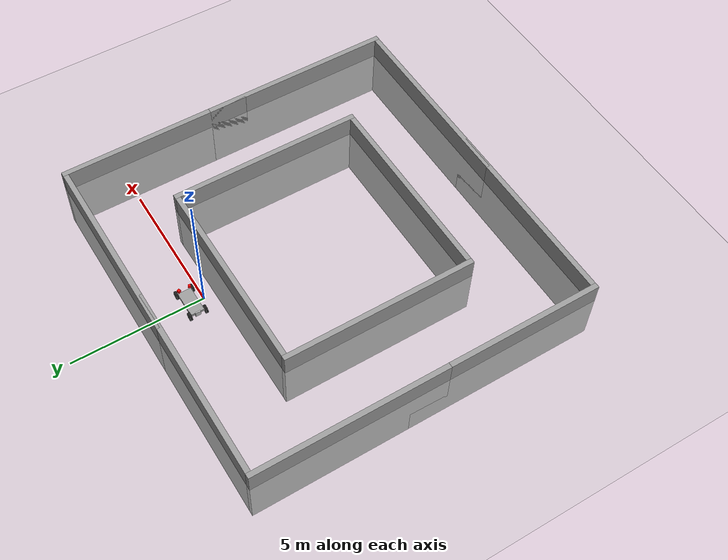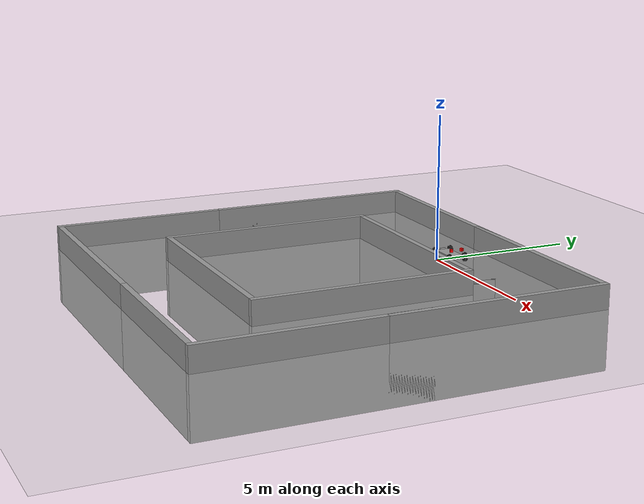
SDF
<?xml version="1.0" ?>
<sdf version='1.6'>
  <world name='corridor'>
    <physics type='ode'>
      <ode>
        <solver>
          <type>quick</type>
          <iters>1000</iters>
          <sor>1.3</sor>
        </solver>
        <constraints>
          <cfm>0</cfm>
          <erp>0.2</erp>
          <contact_max_correcting_vel>100</contact_max_correcting_vel>
          <contact_surface_layer>0.001</contact_surface_layer>
        </constraints>
      </ode>
      <max_step_size>0.01</max_step_size>
      <real_time_factor>1</real_time_factor>
      <real_time_update_rate>100</real_time_update_rate>
      <gravity>0 0 -9.8</gravity>
    </physics>

    <include>
      <uri>model://ground_plane</uri>
    </include>

    <include>
      <uri>model://sun</uri>
    </include>

    <include>
      <uri>model://auto_trax_car</uri>
      <pose>0 0.5 0 0 0 0</pose>
    </include>

    <include>
      <uri>model://grey_wall</uri>
      <pose>3 2 -2 0 0 0</pose>
    </include>

    <include>
      <uri>model://grey_wall</uri>
      <pose>0 -1 -2 0 0 0</pose>
    </include>

    <include>
      <uri>model://grey_wall</uri>
      <pose>6.85 -1.65 -2 0 0 1.57079632679</pose>
    </include>

    <include>
      <uri>model://grey_wall</uri>
      <pose>-6.85 -7.65 -2 0 0 1.57079632679</pose>
    </include>

    <include>
      <uri>model://grey_wall</uri>
      <pose>3.85 -4.65 -2 0 0 1.57079632679</pose>
    </include>

    <include>
      <uri>model://grey_wall</uri>
      <pose>0 -8.3 -2 0 0 0</pose>
    </include>

    <include>
      <uri>model://grey_wall</uri>
      <pose>3 -11.3 -2 0 0 0</pose>
    </include>

    <include>
      <uri>model://grey_wall</uri>
      <pose>6.85 -7.65 -2 0 0 1.57079632679</pose>
    </include>

    <include>
      <uri>model://grey_wall</uri>
      <pose>-3.85 -4.65 -2 0 0 1.57079632679</pose>
    </include>

    <include>
      <uri>model://grey_wall</uri>
      <pose>-6.85 -1.65 -2 0 0 1.57079632679</pose>
    </include>

    <include>
      <uri>model://grey_wall</uri>
      <pose>-3 2 -2 0 0 0</pose>
    </include>

    <include>
      <uri>model://grey_wall</uri>
      <pose>-3 -11.3 -2 0 0 0</pose>
    </include>
  </world>
</sdf>

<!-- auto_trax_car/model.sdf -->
<sdf version="1.4">
  <model name="auto_trax_car">
    <link name="chassis">
      <pose>0 0 0.15  0 0 0</pose>
      <inertial>
        <pose>0 0 0  0 0 0</pose>
        <mass>5</mass>
        <inertia>
          <ixx>0.21666666666666667</ixx>
          <iyy>0.8416666666666667</iyy>
          <izz>1.0416666666666667</izz>
          <ixy>0</ixy>
          <ixz>0</ixz>
          <iyz>0</iyz>
        </inertia>
      </inertial>
      <collision name="collision">
        <geometry>
          <box>
            <size>1.0 0.5 0.1</size>
          </box>
        </geometry>
      </collision>
      <visual name="visual">
        <cast_shadows>false</cast_shadows>
        <geometry>
          <box>
            <size>1.0 0.5 0.1</size>
          </box>
        </geometry>
        <material>
          <script>
            <uri>file://media/materials/scripts/gazebo.material</uri>
            <name>Gazebo/Grey</name>
          </script>
        </material>
      </visual>
    </link>

    <link name="wheel_front_left">
      <pose>0.5 0.298 0.15  -1.5707963267948966 -0.08726646259971647 0</pose>
      <inertial>
        <mass>0.5</mass>
        <inertia>
          <ixx>0.0030791666666666667</ixx>
          <iyy>0.0030791666666666667</iyy>
          <izz>0.005625</izz>
          <ixy>0</ixy>
          <ixz>0</ixz>
          <iyz>0</iyz>
        </inertia>
      </inertial>
      <collision name="collision">
        <geometry>
          <cylinder>
            <radius>0.15</radius>
            <length>0.08</length>
          </cylinder>
        </geometry>
      </collision>
      <visual name="visual">
        <cast_shadows>false</cast_shadows>
        <geometry>
          <cylinder>
            <radius>0.15</radius>
            <length>0.08</length>
          </cylinder>
        </geometry>
        <material>
          <script>
            <uri>file://media/materials/scripts/gazebo.material</uri>
            <name>Gazebo/Black</name>
          </script>
        </material>
      </visual>
    </link>

    <joint name="wheel_front_left_steer_spin" type="fixed">
      <parent>chassis</parent>
      <child>wheel_front_left</child>
      <axis>
        <xyz>0 0 -1</xyz>
      </axis>
    </joint>

    <link name="wheel_front_right">
      <pose>0.5 -0.298 0.15  -1.5707963267948966 -0.08726646259971647 0</pose>
      <inertial>
        <mass>0.5</mass>
        <inertia>
          <ixx>0.0030791666666666667</ixx>
          <iyy>0.0030791666666666667</iyy>
          <izz>0.005625</izz>
          <ixy>0</ixy>
          <ixz>0</ixz>
          <iyz>0</iyz>
        </inertia>
      </inertial>
      <collision name="collision">
        <geometry>
          <cylinder>
            <radius>0.15</radius>
            <length>0.08</length>
          </cylinder>
        </geometry>
      </collision>
      <visual name="visual">
        <cast_shadows>false</cast_shadows>
        <geometry>
          <cylinder>
            <radius>0.15</radius>
            <length>0.08</length>
          </cylinder>
        </geometry>
        <material>
          <script>
            <uri>file://media/materials/scripts/gazebo.material</uri>
            <name>Gazebo/Black</name>
          </script>
        </material>
      </visual>
    </link>

    <joint name="wheel_front_right_steer_spin" type="fixed">
      <parent>chassis</parent>
      <child>wheel_front_right</child>
      <axis>
        <xyz>0 0 1</xyz>
      </axis>
    </joint>

    <link name="wheel_rear_left">
      <pose>-0.5 0.298 0.15  -1.5707963267948966 0 0</pose>
      <inertial>
        <mass>0.5</mass>
        <inertia>
          <ixx>0.0030791666666666667</ixx>
          <iyy>0.0030791666666666667</iyy>
          <izz>0.005625</izz>
          <ixy>0</ixy>
          <ixz>0</ixz>
          <iyz>0</iyz>
        </inertia>
      </inertial>
      <collision name="collision">
        <geometry>
          <cylinder>
            <radius>0.15</radius>
            <length>0.08</length>
          </cylinder>
        </geometry>
      </collision>
      <visual name="visual">
        <cast_shadows>false</cast_shadows>
        <geometry>
          <cylinder>
            <radius>0.15</radius>
            <length>0.08</length>
          </cylinder>
        </geometry>
        <material>
          <script>
            <uri>file://media/materials/scripts/gazebo.material</uri>
            <name>Gazebo/Black</name>
          </script>
        </material>
      </visual>
    </link>

    <joint name="wheel_rear_left_spin" type="fixed">
      <parent>chassis</parent>
      <child>wheel_rear_left</child>
      <axis>
        <xyz>0 0 -1</xyz>
      </axis>
    </joint>

    <link name="wheel_rear_right">
      <pose>-0.5 -0.298 0.15  -1.5707963267948966 0 0</pose>
      <inertial>
        <mass>0.5</mass>
        <inertia>
          <ixx>0.0030791666666666667</ixx>
          <iyy>0.0030791666666666667</iyy>
          <izz>0.005625</izz>
          <ixy>0</ixy>
          <ixz>0</ixz>
          <iyz>0</iyz>
        </inertia>
      </inertial>
      <collision name="collision">
        <geometry>
          <cylinder>
            <radius>0.15</radius>
            <length>0.08</length>
          </cylinder>
        </geometry>
      </collision>
      <visual name="visual">
        <cast_shadows>false</cast_shadows>
        <geometry>
          <cylinder>
            <radius>0.15</radius>
            <length>0.08</length>
          </cylinder>
        </geometry>
        <material>
          <script>
            <uri>file://media/materials/scripts/gazebo.material</uri>
            <name>Gazebo/Black</name>
          </script>
        </material>
      </visual>
    </link>

    <joint name="wheel_rear_right_spin" type="fixed">
      <parent>chassis</parent>
      <child>wheel_rear_right</child>
      <axis>
        <xyz>0 0 1</xyz>
      </axis>
    </joint>

    <link name="left_kinect_link">
      <pose>0.45 0.2 0.4 0 0 0.349066</pose>
      <collision name="collision">
        <geometry>
          <box>
            <size>0.1 0.1 0.1</size>
          </box>
        </geometry>
      </collision>
      <visual name="visual">
        <cast_shadows>false</cast_shadows>
        <geometry>
          <box>
            <size>0.1 0.1 0.1</size>
          </box>
        </geometry>
        <material name="orange">
          <ambient>1 0 0 1</ambient>
          <diffuse>1 0 0 1</diffuse>
          <specular>0.1 0.1 0.1 1</specular>
        </material>
      </visual>
      <sensor type="ray" name="ray_left">
	<pose>0 0 0 0 0 0</pose>
        <update_rate>35.0</update_rate>
	<visualize>true</visualize>
        <ray name="laser_scan_left">
          <scan>
            <horizontal>
              <samples>360</samples>
              <resolution>1</resolution>
              <min_angle>-0.4974188</min_angle>
              <max_angle>0.4974188</max_angle>
            </horizontal>
          </scan>
          <range>
            <min>0.3</min>
            <max>2.0</max>
            <resolution>0.01</resolution>
          </range>
        </ray>
        <plugin name="laser_scan_controller_left" filename="libgazebo_ros_laser.so">
          <frameName>camera_left</frameName>
          <topicName>scan</topicName>
        </plugin>
      </sensor>
      <sensor type="camera" name="camera_left">
	<pose>0 0 0 0 0 0</pose>
        <update_rate>30.0</update_rate>
        <camera name="left_camera">
	  <pose>0 0 0 0 0 0</pose>
          <horizontal_fov>1.55</horizontal_fov>
          <image>
            <width>640</width>
            <height>480</height>
            <format>L8</format>
          </image>
          <clip>
            <near>0.02</near>
            <far>50</far>
          </clip>
	  <noise>
            <type>gaussian</type>
            <mean>0.0</mean>
            <stddev>0.007</stddev>
          </noise>
        </camera>
        <plugin name="left_camera_controller" filename="libgazebo_ros_camera.so">
          <alwaysOn>true</alwaysOn>
          <updateRate>30.0</updateRate>
          <cameraName>gazebo_left_camera</cameraName>
          <imageTopicName>image_raw</imageTopicName>
          <cameraInfoTopicName>camera_info</cameraInfoTopicName>
          <hackBaseline>0.07</hackBaseline>
          <frameName>left_kinect_link</frameName>
        </plugin>
      </sensor>
    </link>

    <joint name="kinect_joint_left" type="fixed">
      <parent>chassis</parent>
      <child>left_kinect_link</child>
      <axis>
        <xyz>0 0 1</xyz>
      </axis>
    </joint>

    <link name="right_kinect_link">
      <pose>0.45 -0.2 0.4 0 0 -0.349066</pose>
      <collision name="collision">
        <geometry>
          <box>
            <size>0.1 0.1 0.1</size>
          </box>
        </geometry>
      </collision>
      <visual name="visual">
        <cast_shadows>false</cast_shadows>
        <geometry>
          <box>
            <size>0.1 0.1 0.1</size>
          </box>
        </geometry>
        <material name="orange">
          <ambient>1 0 0 1</ambient>
          <diffuse>1 0 0 1</diffuse>
          <specular>0.1 0.1 0.1 1</specular>
        </material>
      </visual>
      <sensor type="ray" name="ray_right">
	<pose>0 0 0 0 0 0</pose>
        <update_rate>35.0</update_rate>
	<visualize>true</visualize>
        <ray name="laser_scan_right">
          <scan>
            <horizontal>
              <samples>360</samples>
              <resolution>1</resolution>
              <min_angle>-0.4974188</min_angle>
              <max_angle>0.4974188</max_angle>
            </horizontal>
          </scan>
          <range>
            <min>0.3</min>
            <max>2.0</max>
            <resolution>0.01</resolution>
          </range>
        </ray>
        <plugin name="laser_scan_controller_right" filename="libgazebo_ros_laser.so">
          <frameName>camera_right</frameName>
          <topicName>scan</topicName>
        </plugin>
      </sensor>
      <sensor type="camera" name="camera_right">
	<pose>0 0 0 0 0 0</pose>
        <update_rate>30.0</update_rate>
        <camera name="right_camera">
	  <pose>0 0 0 0 0 0</pose>
          <horizontal_fov>1.55</horizontal_fov>
          <image>
            <width>640</width>
            <height>480</height>
            <format>L8</format>
          </image>
          <clip>
            <near>0.02</near>
            <far>50</far>
          </clip>
	  <noise>
            <type>gaussian</type>
            <mean>0.0</mean>
            <stddev>0.007</stddev>
          </noise>
        </camera>
        <plugin name="right_camera_controller" filename="libgazebo_ros_camera.so">
          <alwaysOn>true</alwaysOn>
          <updateRate>30.0</updateRate>
          <cameraName>gazebo_right_camera</cameraName>
          <imageTopicName>image_raw</imageTopicName>
          <cameraInfoTopicName>camera_info</cameraInfoTopicName>
          <hackBaseline>0.07</hackBaseline>
          <frameName>right_kinect_link</frameName>
        </plugin>
      </sensor>
    </link>

    <joint name="kinect_joint_right" type="fixed">
      <parent>chassis</parent>
      <child>right_kinect_link</child>
      <axis>
        <xyz>0 0 1</xyz>
      </axis>
    </joint>

    <link name="tag_link">
      <pose>-0.525 0 0.15 0 -1.57079632679 0</pose>
      <collision name="collision">
        <geometry>
          <box>
            <size>0.2 0.2 0.05</size>
          </box>
        </geometry>
      </collision>
      <visual name="visual">
        <cast_shadows>false</cast_shadows>
        <geometry>
          <box>
            <size>0.2 0.2 0.05</size>
          </box>
        </geometry>
        <material>
          <script>
            <uri>model://april_tag/materials/scripts</uri>
            <uri>model://april_tag/materials/textures</uri>
            <name>April_Tag/Tag1</name>
          </script>
        </material>
      </visual>
    </link>

    <joint name="tag_joint" type="fixed">
      <parent>chassis</parent>
      <child>tag_link</child>
      <axis>
        <xyz>1 0 0</xyz>
      </axis>
    </joint>

    <plugin name="move_cart" filename="libmove_cart.so"/>
  </model>
</sdf>

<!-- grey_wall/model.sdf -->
<sdf version="1.5">
  <model name="grey_wall">
    <static>true</static>
    <link name="link">
      <pose>0 0 1.4 0 0 0</pose>
      <collision name="collision">
        <geometry>
          <box>
            <size>7.5 0.2 2.8</size>
          </box>
        </geometry>
      </collision>
      <visual name="visual">
        <cast_shadows>false</cast_shadows>
        <geometry>
          <box>
            <size>7.5 0.2 2.8</size>
          </box>
        </geometry>
        <material>
          <script>
            <uri>model://../model_source/models/grey_wall/materials/scripts</uri>
            <uri>model://../model_source/models/grey_wall/materials/textures</uri>
            <name>vrc/grey_wall</name>
          </script>
        </material>
      </visual>
    </link>
  </model>
</sdf>
